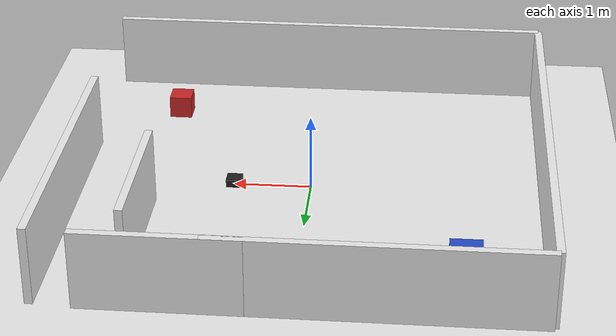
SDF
<sdf version="1.7">
 <world name="living_room">
  <light name="sun" type="directional">
   <cast_shadows>0</cast_shadows>
   <pose>0 0 10 0 -0 0</pose>
   <diffuse>0.8 0.8 0.8 1</diffuse>
   <specular>0.2 0.2 0.2 1</specular>
   <attenuation>
    <range>1000</range>
    <constant>0.9</constant>
    <linear>0.01</linear>
    <quadratic>0.001</quadratic>
   </attenuation>
   <direction>-0.5 0.1 -0.9</direction>
  </light>
  <model name="ground_plane">
   <static>1</static>
   <link name="link">
    <collision name="collision">
     <geometry><plane><normal>0 0 1</normal><size>6 6</size></plane></geometry>
    </collision>
    <visual name="visual">
     <geometry><plane><normal>0 0 1</normal><size>6 6</size></plane></geometry>
     <material>
      <script><uri>file://media/materials/scripts/gazebo.material</uri><name>Gazebo/White</name></script>
     </material>
    </visual>
   </link>
  </model>
  <model name="wall_north">
   <static>1</static>
   <link name="link">
    <collision name="collision"><geometry><box><size>4 0.1 1.0</size></box></geometry></collision>
    <visual name="visual">
     <geometry><box><size>4 0.1 1.0</size></box></geometry>
     <material>
      <script><uri>file://media/materials/scripts/gazebo.material</uri><name>Gazebo/White</name></script>
     </material>
    </visual>
    <pose>-1 3 0.5 0 0 0</pose>
   </link>
  </model>
  <model name="wall_north_short">
   <static>1</static>
   <link name="link">
    <collision name="collision"><geometry><box><size>2 0.1 1.0</size></box></geometry></collision>
    <visual name="visual">
     <geometry><box><size>2 0.1 1.0</size></box></geometry>
     <material>
      <script><uri>file://media/materials/scripts/gazebo.material</uri><name>Gazebo/White</name></script>
     </material>
    </visual>
    <pose>2 1.5 0.5 0 0 1.57</pose>
   </link>
  </model>
  <model name="wall_south">
   <static>1</static>
   <link name="link">
    <collision name="collision"><geometry><box><size>6 0.1 1.0</size></box></geometry></collision>
    <visual name="visual">
     <geometry><box><size>6 0.1 1.0</size></box></geometry>
     <material>
      <script><uri>file://media/materials/scripts/gazebo.material</uri><name>Gazebo/White</name></script>
     </material>
    </visual>
    <pose>0 -3 0.5 0 0 0</pose>
   </link>
  </model>
  <model name="wall_east">
   <static>1</static>
   <link name="link">
    <collision name="collision"><geometry><box><size>0.1 4 1.0</size></box></geometry></collision>
    <visual name="visual">
     <geometry><box><size>0.1 4 1.0</size></box></geometry>
     <material>
      <script><uri>file://media/materials/scripts/gazebo.material</uri><name>Gazebo/White</name></script>
     </material>
    </visual>
    <pose>3 1 0.5 0 0 0</pose>
   </link>
  </model>
  <model name="wall_east_short">
   <static>1</static>
   <link name="link">
    <collision name="collision"><geometry><box><size>0.1 2 1.0</size></box></geometry></collision>
    <visual name="visual">
     <geometry><box><size>0.1 2 1.0</size></box></geometry>
     <material>
      <script><uri>file://media/materials/scripts/gazebo.material</uri><name>Gazebo/White</name></script>
     </material>
    </visual>
    <pose>1.5 3 0.5 0 0 1.57</pose>
   </link>
  </model>
  <model name="wall_west">
   <static>1</static>
   <link name="link">
    <collision name="collision"><geometry><box><size>0.1 6 1.0</size></box></geometry></collision>
    <visual name="visual">
     <geometry><box><size>0.1 6 1.0</size></box></geometry>
     <material>
      <script><uri>file://media/materials/scripts/gazebo.material</uri><name>Gazebo/White</name></script>
     </material>
    </visual>
    <pose>-3 0 0.5 0 0 0</pose>
   </link>
  </model>
  <model name="coke_box">
   <static>1</static>
   <link name="box_link">
    <collision name="box_collision"><geometry><box><size>0.1 0.1 0.1</size></box></geometry></collision>
    <visual name="box_visual">
     <geometry><box><size>0.2 0.2 0.1</size></box></geometry>
     <material>
      <script><uri>file://media/materials/scripts/gazebo.material</uri><name>Gazebo/Black</name></script>
     </material>
    </visual>
    <pose>1 0 0.05 0 0 0</pose>
   </link>
  </model>
  <model name="box1">
   <static>1</static>
   <link name="link">
    <collision name="collision"><geometry><box><size>0.4 0.4 0.4</size></box></geometry></collision>
    <visual name="visual">
     <geometry><box><size>0.4 0.4 0.4</size></box></geometry>
     <material>
      <script><uri>file://media/materials/scripts/gazebo.material</uri><name>Gazebo/Blue</name></script>
     </material>
    </visual>
    <pose>-2 2 0.2 0 0 0</pose>
   </link>
  </model>
  <model name="box2">
   <static>1</static>
   <link name="link">
    <collision name="collision"><geometry><box><size>0.3 0.3 0.3</size></box></geometry></collision>
    <visual name="visual">
     <geometry><box><size>0.3 0.3 0.3</size></box></geometry>
     <material>
      <script><uri>file://media/materials/scripts/gazebo.material</uri><name>Gazebo/Red</name></script>
     </material>
    </visual>
    <pose>2 -2 0.15 0 0 0</pose>
   </link>
  </model>
  <gravity>0 0 -9.8</gravity>
  <scene><ambient>0.4 0.4 0.4 1</ambient><background>0.7 0.7 0.7 1</background><shadows>1</shadows></scene>
 </world>
</sdf>
